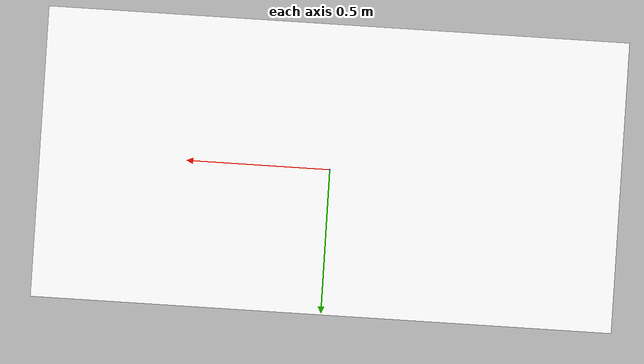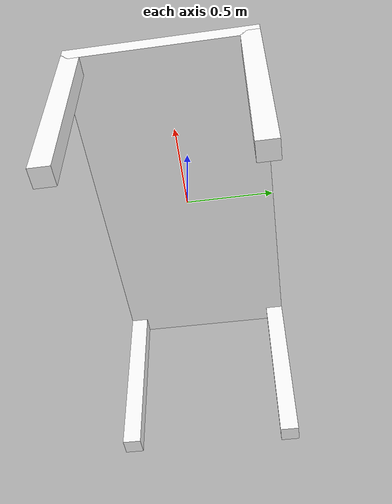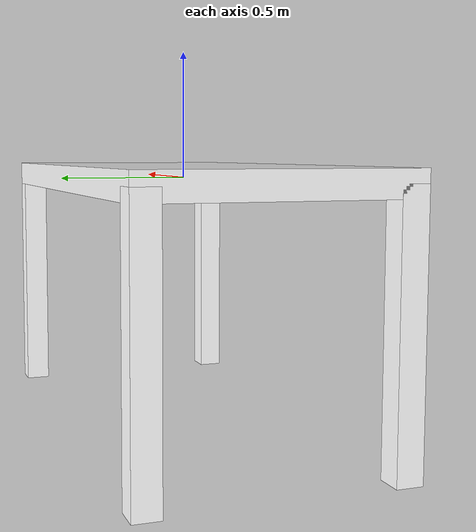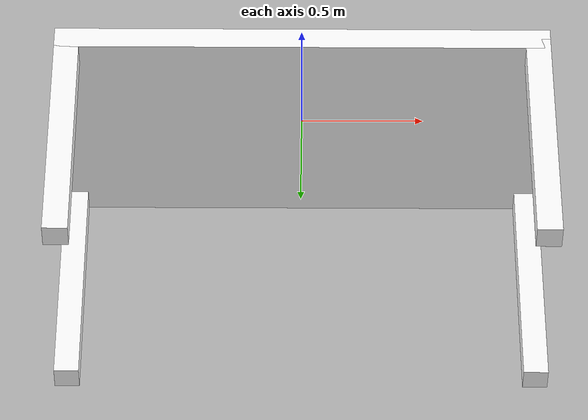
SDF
<sdf version='1.11'>
  <model name='table'>
    <static>true</static>
    <link name='table'>
      <inertial>
        <pose>0 0 -0.20000000298023221 -3.141592566167013 -1.570796282091413 0</pose>
        <mass>10</mass>
        <inertia>
          <ixx>6.9266667366027832</ixx>
          <ixy>0</ixy>
          <ixz>0</ixz>
          <iyy>6.5516667366027832</iyy>
          <iyz>0</iyz>
          <izz>2.251666784286499</izz>
        </inertia>
      </inertial>
      <collision name='table_fixed_joint_lump__Geom_0_collision_collision'>
        <pose>0 0 0 0 0 0</pose>
        <geometry>
          <box>
            <size>2 1 0.10000000149011611</size>
          </box>
        </geometry>
      </collision>
      <collision name='table_fixed_joint_lump__Geom_1_collision_collision_1'>
        <pose>0.94999998807907104 0.44999998807907099 -0.5 0 0 0</pose>
        <geometry>
          <box>
            <size>0.10000000149011611 0.10000000149011611 1</size>
          </box>
        </geometry>
      </collision>
      <collision name='table_fixed_joint_lump__Geom_2_collision_collision_2'>
        <pose>-0.94999998807907104 0.44999998807907099 -0.5 0 0 0</pose>
        <geometry>
          <box>
            <size>0.10000000149011611 0.10000000149011611 1</size>
          </box>
        </geometry>
      </collision>
      <collision name='table_fixed_joint_lump__Geom_3_collision_collision_3'>
        <pose>0.94999998807907104 -0.44999998807907099 -0.5 0 0 0</pose>
        <geometry>
          <box>
            <size>0.10000000149011611 0.10000000149011611 1</size>
          </box>
        </geometry>
      </collision>
      <collision name='table_fixed_joint_lump__Geom_4_collision_collision_4'>
        <pose>-0.94999998807907104 -0.44999998807907099 -0.5 0 0 0</pose>
        <geometry>
          <box>
            <size>0.10000000149011611 0.10000000149011611 1</size>
          </box>
        </geometry>
      </collision>
      <visual name='table_fixed_joint_lump__Geom_0_visual'>
        <pose>0 0 0 0 0 0</pose>
        <geometry>
          <box>
            <size>2 1 0.10000000149011611</size>
          </box>
        </geometry>
        <material>
          <diffuse>1 1 1 1</diffuse>
          <ambient>1 1 1 1</ambient>
        </material>
      </visual>
      <visual name='table_fixed_joint_lump__Geom_1_visual_1'>
        <pose>0.94999998807907104 0.44999998807907099 -0.5 0 0 0</pose>
        <geometry>
          <box>
            <size>0.10000000149011611 0.10000000149011611 1</size>
          </box>
        </geometry>
        <material>
          <diffuse>1 1 1 1</diffuse>
          <ambient>1 1 1 1</ambient>
        </material>
      </visual>
      <visual name='table_fixed_joint_lump__Geom_2_visual_2'>
        <pose>-0.94999998807907104 0.44999998807907099 -0.5 0 0 0</pose>
        <geometry>
          <box>
            <size>0.10000000149011611 0.10000000149011611 1</size>
          </box>
        </geometry>
        <material>
          <diffuse>1 1 1 1</diffuse>
          <ambient>1 1 1 1</ambient>
        </material>
      </visual>
      <visual name='table_fixed_joint_lump__Geom_3_visual_3'>
        <pose>0.94999998807907104 -0.44999998807907099 -0.5 0 0 0</pose>
        <geometry>
          <box>
            <size>0.10000000149011611 0.10000000149011611 1</size>
          </box>
        </geometry>
        <material>
          <diffuse>1 1 1 1</diffuse>
          <ambient>1 1 1 1</ambient>
        </material>
      </visual>
      <visual name='table_fixed_joint_lump__Geom_4_visual_4'>
        <pose>-0.94999998807907104 -0.44999998807907099 -0.5 0 0 0</pose>
        <geometry>
          <box>
            <size>0.10000000149011611 0.10000000149011611 1</size>
          </box>
        </geometry>
        <material>
          <diffuse>1 1 1 1</diffuse>
          <ambient>1 1 1 1</ambient>
        </material>
      </visual>
    </link>
  </model>
</sdf>
